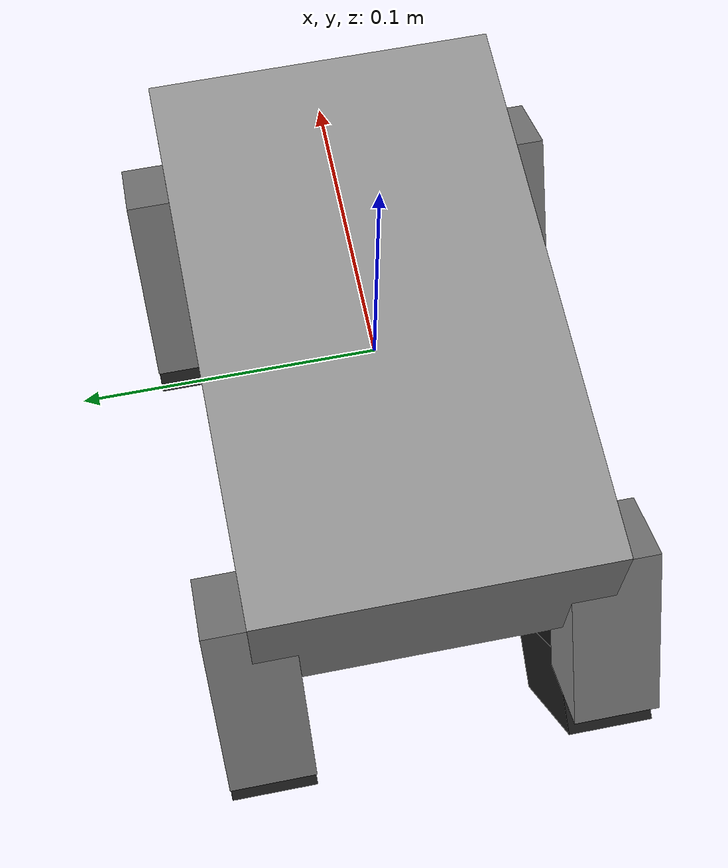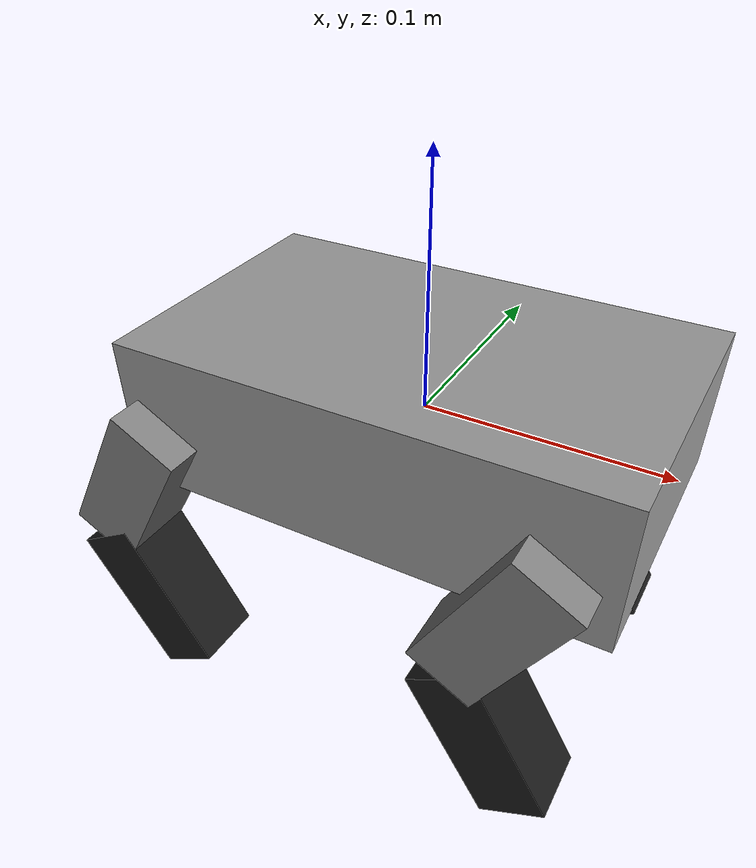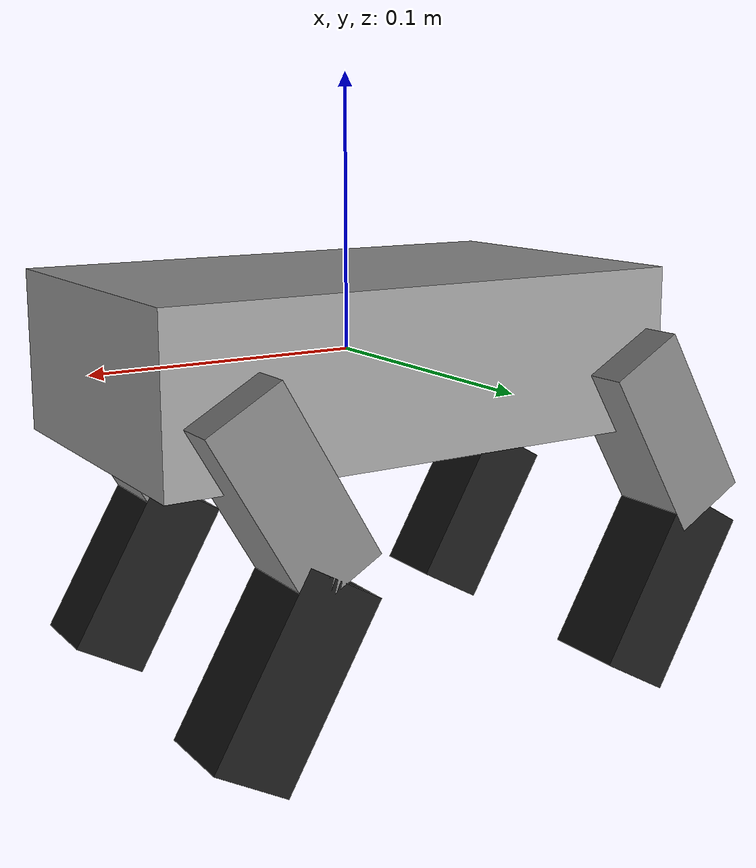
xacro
<?xml version="1.0"?>
<robot name="dogbot" xmlns:xacro="http://www.ros.org/wiki/xacro">

  <material name="gray_thigh">
    <color rgba="0.5 0.5 0.5 1.0"/>
  </material>
  <material name="black_shin">
    <color rgba="0.1 0.1 0.1 1.0"/>
  </material>
  <material name="base_gray">
    <color rgba="0.6 0.6 0.6 1.0"/>
  </material>

  <link name="base_link">
    <visual>
      <geometry>
        <box size="0.2 0.12 0.06"/>
      </geometry>
      <material name="base_gray"/>
    </visual>
    <collision>
      <geometry>
        <box size="0.2 0.12 0.06"/>
      </geometry>
    </collision>
    <inertial>
      <mass value="1.15"/>
      <origin xyz="0 0 0" rpy="0 0 0"/>
      <inertia ixx="0.0016" ixy="0.0" ixz="0.0" iyy="0.004" izz="0.005" iyz="0.0" />
    </inertial>
  </link>

  <link name="front_left_thigh">
    <visual>
      <geometry><box size="0.03 0.03 0.07"/></geometry>
      <origin xyz="0 0 -0.035" rpy="0 0 0"/>
      <material name="gray_thigh"/>
    </visual>
    <collision>
      <geometry><box size="0.03 0.03 0.07"/></geometry>
      <origin xyz="0 0 -0.035" rpy="0 0 0"/>
    </collision>
    <inertial>
      <mass value="0.15"/>
      <origin xyz="0 0 -0.035" rpy="0 0 0"/>
      <inertia ixx="0.000030" ixy="0.0" ixz="0.0" iyy="0.000030" izz="0.000006" iyz="0.0" />
    </inertial>
  </link>
  <joint name="front_left_hip" type="revolute">
    <parent link="base_link"/>
    <child link="front_left_thigh"/>
    <origin xyz="0.08 0.06 0" rpy="0 0.5236 0"/>
    <axis xyz="0 1 0"/>
    <limit lower="-3.14159" upper="3.14159" effort="2.2" velocity="0.5"/>
  </joint>

  <link name="front_left_shin">
    <visual>
      <geometry><box size="0.03 0.03 0.07"/></geometry>
      <origin xyz="0 0 -0.035" rpy="0 0 0"/>
      <material name="black_shin"/>
    </visual>
    <collision>
      <geometry><box size="0.03 0.03 0.07"/></geometry>
      <origin xyz="0 0 -0.035" rpy="0 0 0"/>
    </collision>
    <inertial>
      <mass value="0.10"/>
      <origin xyz="0 0 -0.035" rpy="0 0 0"/>
      <inertia ixx="0.000030" ixy="0.0" ixz="0.0" iyy="0.000030" izz="0.000006" iyz="0.0" />
    </inertial>
  </link>
  <joint name="front_left_knee" type="revolute">
    <parent link="front_left_thigh"/>
    <child link="front_left_shin"/>
    <origin xyz="0 0 -0.07" rpy="0 -1.0472 0"/>
    <axis xyz="0 1 0"/>
    <limit lower="-1.5708" upper="1.5708" effort="1.92" velocity="0.5"/>
  </joint>
  <gazebo reference="front_left_shin">
    <mu1>0.8</mu1> <mu2>0.8</mu2> <material>Gazebo/Black</material>
    <kp>1000000.0</kp> <kd>1.0</kd>
  </gazebo>

  <link name="front_right_thigh">
    <visual>
      <geometry><box size="0.03 0.03 0.07"/></geometry>
      <origin xyz="0 0 -0.035" rpy="0 0 0"/>
      <material name="gray_thigh"/>
    </visual>
    <collision>
      <geometry><box size="0.03 0.03 0.07"/></geometry>
      <origin xyz="0 0 -0.035" rpy="0 0 0"/>
    </collision>
    <inertial>
      <mass value="0.15"/>
      <origin xyz="0 0 -0.035" rpy="0 0 0"/>
      <inertia ixx="0.000030" ixy="0.0" ixz="0.0" iyy="0.000030" izz="0.000006" iyz="0.0" />
    </inertial>
  </link>
  <joint name="front_right_hip" type="revolute">
    <parent link="base_link"/>
    <child link="front_right_thigh"/>
    <origin xyz="0.08 -0.06 0" rpy="0 0.5236 0"/>
    <axis xyz="0 1 0"/>
    <limit lower="-3.14159" upper="3.14159" effort="2.2" velocity="0.5"/>
  </joint>

  <link name="front_right_shin">
    <visual>
      <geometry><box size="0.03 0.03 0.07"/></geometry>
      <origin xyz="0 0 -0.035" rpy="0 0 0"/>
      <material name="black_shin"/>
    </visual>
    <collision>
      <geometry><box size="0.03 0.03 0.07"/></geometry>
      <origin xyz="0 0 -0.035" rpy="0 0 0"/>
    </collision>
    <inertial>
      <mass value="0.10"/>
      <origin xyz="0 0 -0.035" rpy="0 0 0"/>
      <inertia ixx="0.000030" ixy="0.0" ixz="0.0" iyy="0.000030" izz="0.000006" iyz="0.0" />
    </inertial>
  </link>
  <joint name="front_right_knee" type="revolute">
    <parent link="front_right_thigh"/>
    <child link="front_right_shin"/>
    <origin xyz="0 0 -0.07" rpy="0 -1.0472 0"/>
    <axis xyz="0 1 0"/>
    <limit lower="-1.5708" upper="1.5708" effort="1.92" velocity="0.5"/>
  </joint>
  <gazebo reference="front_right_shin">
    <mu1>0.8</mu1> <mu2>0.8</mu2> <material>Gazebo/Black</material>
    <kp>1000000.0</kp> <kd>1.0</kd>
  </gazebo>

  <link name="rear_left_thigh">
    <visual>
      <geometry><box size="0.03 0.03 0.07"/></geometry>
      <origin xyz="0 0 -0.035" rpy="0 0 0"/>
      <material name="gray_thigh"/>
    </visual>
    <collision>
      <geometry><box size="0.03 0.03 0.07"/></geometry>
      <origin xyz="0 0 -0.035" rpy="0 0 0"/>
    </collision>
    <inertial>
      <mass value="0.15"/>
      <origin xyz="0 0 -0.035" rpy="0 0 0"/>
      <inertia ixx="0.000030" ixy="0.0" ixz="0.0" iyy="0.000030" izz="0.000006" iyz="0.0" />
    </inertial>
  </link>
  <joint name="rear_left_hip" type="revolute">
    <parent link="base_link"/>
    <child link="rear_left_thigh"/>
    <origin xyz="-0.08 0.06 0" rpy="0 0.5236 0"/>
    <axis xyz="0 1 0"/>
    <limit lower="-3.14159" upper="3.14159" effort="2.2" velocity="0.5"/>
  </joint>

  <link name="rear_left_shin">
    <visual>
      <geometry><box size="0.03 0.03 0.07"/></geometry>
      <origin xyz="0 0 -0.035" rpy="0 0 0"/>
      <material name="black_shin"/>
    </visual>
    <collision>
      <geometry><box size="0.03 0.03 0.07"/></geometry>
      <origin xyz="0 0 -0.035" rpy="0 0 0"/>
    </collision>
    <inertial>
      <mass value="0.10"/>
      <origin xyz="0 0 -0.035" rpy="0 0 0"/>
      <inertia ixx="0.000030" ixy="0.0" ixz="0.0" iyy="0.000030" izz="0.000006" iyz="0.0" />
    </inertial>
  </link>
  <joint name="rear_left_knee" type="revolute">
    <parent link="rear_left_thigh"/>
    <child link="rear_left_shin"/>
    <origin xyz="0 0 -0.07" rpy="0 -1.0472 0"/>
    <axis xyz="0 1 0"/>
    <limit lower="-1.5708" upper="1.5708" effort="1.92" velocity="0.5"/>
  </joint>
  <gazebo reference="rear_left_shin">
    <mu1>0.8</mu1> <mu2>0.8</mu2> <material>Gazebo/Black</material>
    <kp>1000000.0</kp> <kd>1.0</kd>
  </gazebo>

  <link name="rear_right_thigh">
    <visual>
      <geometry><box size="0.03 0.03 0.07"/></geometry>
      <origin xyz="0 0 -0.035" rpy="0 0 0"/>
      <material name="gray_thigh"/>
    </visual>
    <collision>
      <geometry><box size="0.03 0.03 0.07"/></geometry>
      <origin xyz="0 0 -0.035" rpy="0 0 0"/>
    </collision>
    <inertial>
      <mass value="0.15"/>
      <origin xyz="0 0 -0.035" rpy="0 0 0"/>
      <inertia ixx="0.000030" ixy="0.0" ixz="0.0" iyy="0.000030" izz="0.000006" iyz="0.0" />
    </inertial>
  </link>
  <joint name="rear_right_hip" type="revolute">
    <parent link="base_link"/>
    <child link="rear_right_thigh"/>
    <origin xyz="-0.08 -0.06 0" rpy="0 0.5236 0"/>
    <axis xyz="0 1 0"/>
    <limit lower="-3.14159" upper="3.14159" effort="2.2" velocity="0.5"/>
  </joint>

  <link name="rear_right_shin">
    <visual>
      <geometry><box size="0.03 0.03 0.07"/></geometry>
      <origin xyz="0 0 -0.035" rpy="0 0 0"/>
      <material name="black_shin"/>
    </visual>
    <collision>
      <geometry><box size="0.03 0.03 0.07"/></geometry>
      <origin xyz="0 0 -0.035" rpy="0 0 0"/>
    </collision>
    <inertial>
      <mass value="0.10"/>
      <origin xyz="0 0 -0.035" rpy="0 0 0"/>
      <inertia ixx="0.000030" ixy="0.0" ixz="0.0" iyy="0.000030" izz="0.000006" iyz="0.0" />
    </inertial>
  </link>
  <joint name="rear_right_knee" type="revolute">
    <parent link="rear_right_thigh"/>
    <child link="rear_right_shin"/>
    <origin xyz="0 0 -0.07" rpy="0 -1.0472 0"/>
    <axis xyz="0 1 0"/>
    <limit lower="-1.5708" upper="1.5708" effort="1.92" velocity="0.5"/>
  </joint>
  <gazebo reference="rear_right_shin">
    <mu1>0.8</mu1> <mu2>0.8</mu2> <material>Gazebo/Black</material>
    <kp>1000000.0</kp> <kd>1.0</kd>
  </gazebo>

  <ros2_control name="GazeboSystem" type="system">
    <hardware>
      <plugin>gz_ros2_control/GazeboSimSystem</plugin>
    </hardware>

    <joint name="front_left_hip">
      <command_interface name="position">
         <param name="min">-3.14159</param>
         <param name="max">3.14159</param>
      </command_interface>
      <state_interface name="position"/>
      <state_interface name="velocity"/>
    </joint>
    <joint name="front_left_knee">
      <command_interface name="position">
         <param name="min">-1.5708</param>
         <param name="max">1.5708</param>
      </command_interface>
      <state_interface name="position"/>
      <state_interface name="velocity"/>
    </joint>

    <joint name="front_right_hip">
      <command_interface name="position">
         <param name="min">-3.14159</param>
         <param name="max">3.14159</param>
      </command_interface>
      <state_interface name="position"/>
      <state_interface name="velocity"/>
    </joint>
    <joint name="front_right_knee">
      <command_interface name="position">
         <param name="min">-1.5708</param>
         <param name="max">1.5708</param>
      </command_interface>
      <state_interface name="position"/>
      <state_interface name="velocity"/>
    </joint>

    <joint name="rear_left_hip">
      <command_interface name="position">
         <param name="min">-3.14159</param>
         <param name="max">3.14159</param>
      </command_interface>
      <state_interface name="position"/>
      <state_interface name="velocity"/>
    </joint>
    <joint name="rear_left_knee">
      <command_interface name="position">
         <param name="min">-1.5708</param>
         <param name="max">1.5708</param>
      </command_interface>
      <state_interface name="position"/>
      <state_interface name="velocity"/>
    </joint>

    <joint name="rear_right_hip">
      <command_interface name="position">
         <param name="min">-3.14159</param>
         <param name="max">3.14159</param>
      </command_interface>
      <state_interface name="position"/>
      <state_interface name="velocity"/>
    </joint>
    <joint name="rear_right_knee">
      <command_interface name="position">
         <param name="min">-1.5708</param>
         <param name="max">1.5708</param>
      </command_interface>
      <state_interface name="position"/>
      <state_interface name="velocity"/>
    </joint>
  </ros2_control>

  <gazebo>
    <plugin filename="libgz_ros2_control.so" name="gz_ros2_control">
        <parameters>$(find dogbot_description)/config/dogbot_controllers.yaml</parameters>
    </plugin>
  </gazebo>

</robot>
